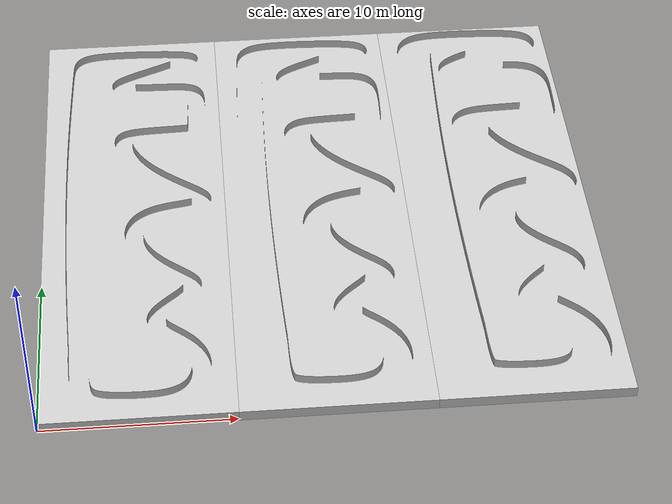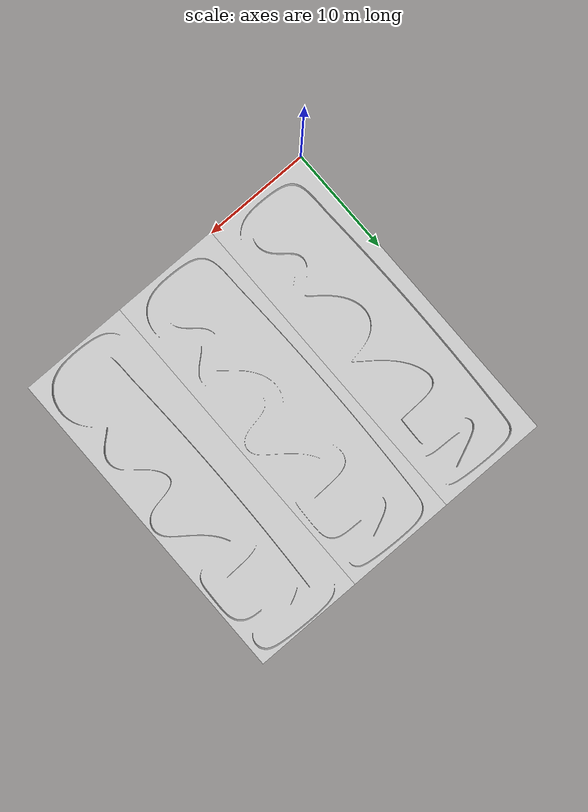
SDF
<?xml version='1.0'?>
<sdf version="1.6">
  <world name="empty">

    <physics name="1ms" type="ignored">
      <max_step_size>0.001</max_step_size>
      <real_time_factor>10.0</real_time_factor>
    </physics>

    <plugin
      filename="gz-sim-physics-system"
      name="gz::sim::systems::Physics">
    </plugin>
    <plugin
        filename="gz-sim-sensors-system"
        name="gz::sim::systems::Sensors">
        <render_engine>ogre2</render_engine>
    </plugin>
    <plugin
      filename="gz-sim-user-commands-system"
      name="gz::sim::systems::UserCommands">
    </plugin>
    <plugin
      filename="gz-sim-scene-broadcaster-system"
      name="gz::sim::systems::SceneBroadcaster">
    </plugin>

    <light type="directional" name="sun">
      <cast_shadows>true</cast_shadows>
      <pose>0 0 10 0 0 0</pose>
      <diffuse>1 1 1 1</diffuse>
      <specular>0.5 0.5 0.5 1</specular>
      <attenuation>
        <range>1000</range>
        <constant>0.9</constant>
        <linear>0.01</linear>
        <quadratic>0.001</quadratic>
      </attenuation>
      <direction>-0.5 0.1 -0.9</direction>
    </light>

    <model name="track_01_100">
        <pose>0 0 0 0 0 0</pose>
        <static>true</static>
        <link name="track">
            <visual name='track_vis'>
                <geometry>
                    <mesh>
                        <uri>model://src/environments/meshes/track_01_100.stl</uri>
                        <scale>0.001 0.001 0.001</scale>
                    </mesh>
                </geometry>
                <material>
                    <ambient>0.8 0.8 0.8 1</ambient>
                    <diffuse>0.8 0.8 0.8 1</diffuse>
                    <specular>0.8 0.8 0.8 1</specular>
                </material>
            </visual>
            <collision name='track_col'>
                <geometry>
                    <mesh>
                        <uri>model://src/environments/meshes/track_01_100.stl</uri>
                        <scale>0.001 0.001 0.001</scale>
                    </mesh>
                </geometry>
            </collision>
        </link>
    </model>

    <model name="track_01_150">
        <pose>10 0 0 0 0 0</pose>
        <static>true</static>
        <link name="track">
            <visual name='track_vis'>
                <geometry>
                    <mesh>
                        <uri>model://src/environments/meshes/track_01_150.stl</uri>
                        <scale>0.001 0.001 0.001</scale>
                    </mesh>
                </geometry>
                <material>
                    <ambient>0.8 0.8 0.8 1</ambient>
                    <diffuse>0.8 0.8 0.8 1</diffuse>
                    <specular>0.8 0.8 0.8 1</specular>
                </material>
            </visual>
            <collision name='track_col'>
                <geometry>
                    <mesh>
                        <uri>model://src/environments/meshes/track_01_150.stl</uri>
                        <scale>0.001 0.001 0.001</scale>
                    </mesh>
                </geometry>
            </collision>
        </link>
    </model>

    <model name="track_01_200">
        <pose>20 0 0 0 0 0</pose>
        <static>true</static>
        <link name="track">
            <visual name='track_vis'>
                <geometry>
                    <mesh>
                        <uri>model://src/environments/meshes/track_01_200.stl</uri>
                        <scale>0.001 0.001 0.001</scale>
                    </mesh>
                </geometry>
                <material>
                    <ambient>0.8 0.8 0.8 1</ambient>
                    <diffuse>0.8 0.8 0.8 1</diffuse>
                    <specular>0.8 0.8 0.8 1</specular>
                </material>
            </visual>
            <collision name='track_col'>
                <geometry>
                    <mesh>
                        <uri>model://src/environments/meshes/track_01_200.stl</uri>
                        <scale>0.001 0.001 0.001</scale>
                    </mesh>
                </geometry>
            </collision>
        </link>
    </model>

  </world>
</sdf>
